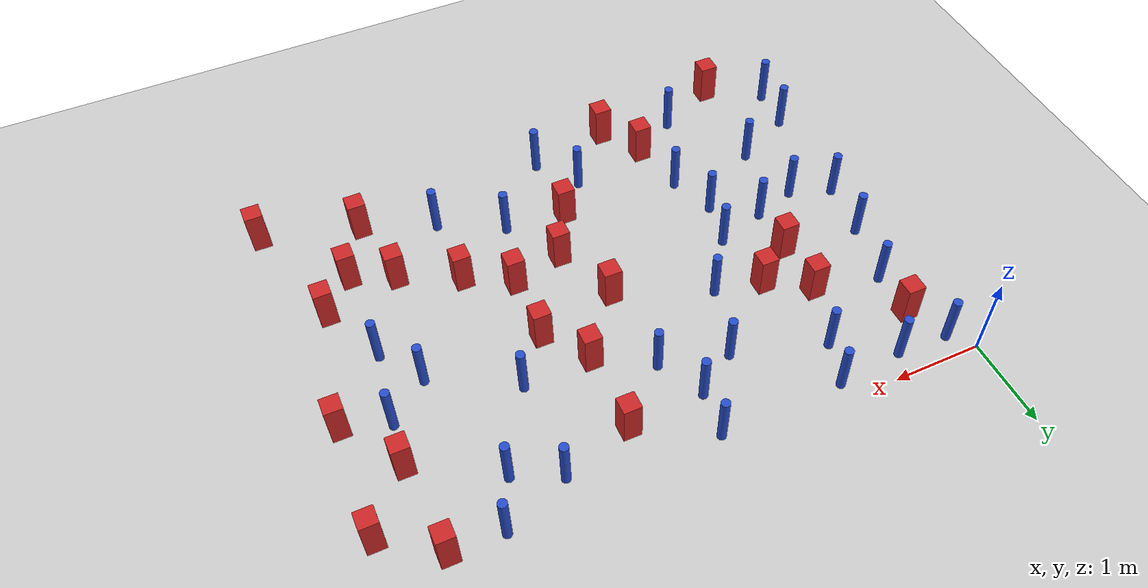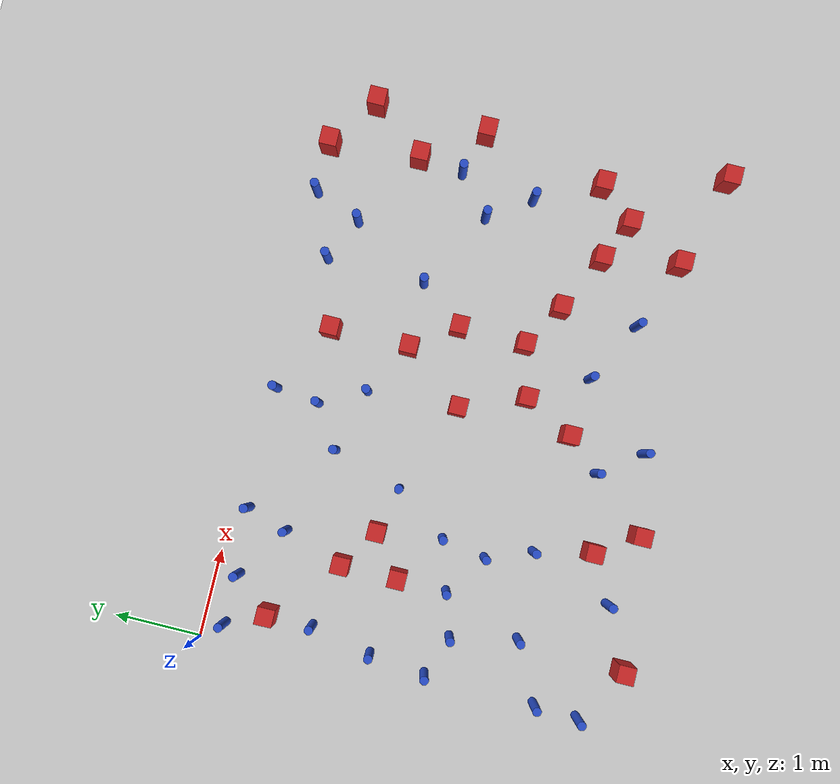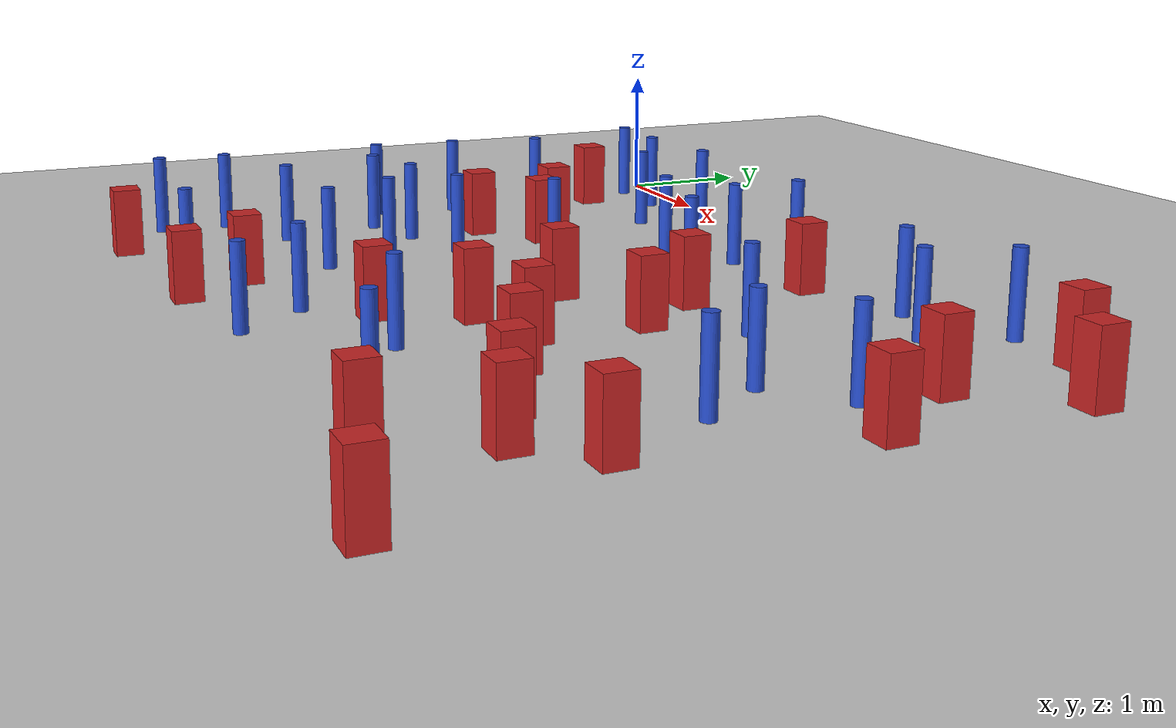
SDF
<sdf version="1.6">
 <world name="default">
  <model name="ground_plane">
   <static>1</static>
   <link name="link">
    <collision name="collision">
     <geometry><plane><normal>0 0 1</normal><size>100 100</size></plane></geometry>
     <surface><friction><ode><mu>100</mu><mu2>50</mu2></ode></friction></surface>
    </collision>
    <visual name="visual">
     <cast_shadows>0</cast_shadows>
     <geometry><plane><normal>0 0 1</normal><size>100 100</size></plane></geometry>
     <material>
      <ambient>1.0 1.0 1.0 1.0</ambient>
      <diffuse>0.8 0.8 0.8 1.0</diffuse>
      <specular>0.01 0.01 0.01 1.000000</specular>
     </material>
    </visual>
   </link>
  </model>
  <model name="square_post_obstacle1">
   <static>true</static>
   <pose>5.72487765999 -3.64540734115 8.22691968438e-08 7.2212513382e-06 -7.54495500217e-07 2.29674213826e-05</pose>
   <link name="link">
    <pose>0 0 0.25 0 -0 0</pose>
    <inertial>
     <mass>100</mass>
     <inertia>
      <ixx>0.166667</ixx>
      <ixy>0</ixy>
      <ixz>0</ixz>
      <iyy>0.166667</iyy>
      <iyz>0</iyz>
      <izz>0.166667</izz>
     </inertia>
    </inertial>
    <collision name="collision"><geometry><box><size>.2 .2 .5</size></box></geometry></collision>
    <visual name="visual">
     <geometry><box><size>.2 .2 .5</size></box></geometry>
     <material>
      <script><name>Gazebo/Red</name><uri>file://media/materials/scripts/gazebo.material</uri></script>
     </material>
    </visual>
   </link>
  </model>
  <model name="square_post_obstacle2">
   <static>true</static>
   <pose>1.18272319816 -2.02289545144 8.22691968438e-08 7.2212513382e-06 -7.54495500217e-07 2.29674213826e-05</pose>
   <link name="link">
    <pose>0 0 0.25 0 -0 0</pose>
    <inertial>
     <mass>100</mass>
     <inertia>
      <ixx>0.166667</ixx>
      <ixy>0</ixy>
      <ixz>0</ixz>
      <iyy>0.166667</iyy>
      <iyz>0</iyz>
      <izz>0.166667</izz>
     </inertia>
    </inertial>
    <collision name="collision"><geometry><box><size>.2 .2 .5</size></box></geometry></collision>
    <visual name="visual">
     <geometry><box><size>.2 .2 .5</size></box></geometry>
     <material>
      <script><name>Gazebo/Red</name><uri>file://media/materials/scripts/gazebo.material</uri></script>
     </material>
    </visual>
   </link>
  </model>
  <model name="pole_obstacle2">
   <static>true</static>
   <pose>1.45222959492 -4.40342588825 2.88873142074e-08 -9.90536689852e-09 4.60219948989e-07 -1.2096599496e-07</pose>
   <link name="link">
    <pose>0 0 0.3 0 -0 0</pose>
    <inertial>
     <mass>1</mass>
     <inertia><ixx>0.145833</ixx><ixy>0</ixy><ixz>0</ixz><iyy>0.145833</iyy><iyz>0</iyz><izz>0.125</izz></inertia>
    </inertial>
    <collision name="collision">
     <geometry><cylinder><radius>0.05</radius><length>.6</length></cylinder></geometry>
    </collision>
    <visual name="visual">
     <geometry><cylinder><radius>0.05</radius><length>.6</length></cylinder></geometry>
     <material>
      <script><name>Gazebo/Blue</name><uri>file://media/materials/scripts/gazebo.material</uri></script>
     </material>
    </visual>
   </link>
  </model>
  <model name="pole_obstacle4">
   <static>true</static>
   <pose>1.83298338898 -3.44916255037 2.88873142074e-08 -9.90536689791e-09 4.6021994899e-07 -1.20965994959e-07</pose>
   <link name="link">
    <pose>0 0 0.3 0 -0 0</pose>
    <inertial>
     <mass>1</mass>
     <inertia><ixx>0.145833</ixx><ixy>0</ixy><ixz>0</ixz><iyy>0.145833</iyy><iyz>0</iyz><izz>0.125</izz></inertia>
    </inertial>
    <collision name="collision">
     <geometry><cylinder><radius>0.05</radius><length>.6</length></cylinder></geometry>
    </collision>
    <visual name="visual">
     <geometry><cylinder><radius>0.05</radius><length>.6</length></cylinder></geometry>
     <material>
      <script><name>Gazebo/Blue</name><uri>file://media/materials/scripts/gazebo.material</uri></script>
     </material>
    </visual>
   </link>
  </model>
  <model name="square_post_obstacle13">
   <static>true</static>
   <pose>5.40528865388 -4.31110512093 8.22691968438e-08 7.2212513382e-06 -7.54495500217e-07 2.29674213826e-05</pose>
   <link name="link">
    <pose>0 0 0.25 0 -0 0</pose>
    <inertial>
     <mass>100</mass>
     <inertia>
      <ixx>0.166667</ixx>
      <ixy>0</ixy>
      <ixz>0</ixz>
      <iyy>0.166667</iyy>
      <iyz>0</iyz>
      <izz>0.166667</izz>
     </inertia>
    </inertial>
    <collision name="collision"><geometry><box><size>.2 .2 .5</size></box></geometry></collision>
    <visual name="visual">
     <geometry><box><size>.2 .2 .5</size></box></geometry>
     <material>
      <script><name>Gazebo/Red</name><uri>file://media/materials/scripts/gazebo.material</uri></script>
     </material>
    </visual>
   </link>
  </model>
  <model name="square_post_obstacle19">
   <static>true</static>
   <pose>4.11415829672 -2.03390158334 8.22691968438e-08 7.2212513382e-06 -7.54495500217e-07 2.29674213826e-05</pose>
   <link name="link">
    <pose>0 0 0.25 0 -0 0</pose>
    <inertial>
     <mass>100</mass>
     <inertia>
      <ixx>0.166667</ixx>
      <ixy>0</ixy>
      <ixz>0</ixz>
      <iyy>0.166667</iyy>
      <iyz>0</iyz>
      <izz>0.166667</izz>
     </inertia>
    </inertial>
    <collision name="collision"><geometry><box><size>.2 .2 .5</size></box></geometry></collision>
    <visual name="visual">
     <geometry><box><size>.2 .2 .5</size></box></geometry>
     <material>
      <script><name>Gazebo/Red</name><uri>file://media/materials/scripts/gazebo.material</uri></script>
     </material>
    </visual>
   </link>
  </model>
  <model name="square_post_obstacle24">
   <static>true</static>
   <pose>6.48046780538 -4.62442355407 8.22691968438e-08 7.2212513382e-06 -7.54495500217e-07 2.29674213826e-05</pose>
   <link name="link">
    <pose>0 0 0.25 0 -0 0</pose>
    <inertial>
     <mass>100</mass>
     <inertia>
      <ixx>0.166667</ixx>
      <ixy>0</ixy>
      <ixz>0</ixz>
      <iyy>0.166667</iyy>
      <iyz>0</iyz>
      <izz>0.166667</izz>
     </inertia>
    </inertial>
    <collision name="collision"><geometry><box><size>.2 .2 .5</size></box></geometry></collision>
    <visual name="visual">
     <geometry><box><size>.2 .2 .5</size></box></geometry>
     <material>
      <script><name>Gazebo/Red</name><uri>file://media/materials/scripts/gazebo.material</uri></script>
     </material>
    </visual>
   </link>
  </model>
  <model name="pole_obstacle23">
   <static>true</static>
   <pose>4.51548085115 -1.52464461213 2.88873142074e-08 -9.90536689445e-09 4.60219948999e-07 -1.20965994956e-07</pose>
   <link name="link">
    <pose>0 0 0.3 0 -0 0</pose>
    <inertial>
     <mass>1</mass>
     <inertia><ixx>0.145833</ixx><ixy>0</ixy><ixz>0</ixz><iyy>0.145833</iyy><iyz>0</iyz><izz>0.125</izz></inertia>
    </inertial>
    <collision name="collision">
     <geometry><cylinder><radius>0.05</radius><length>.6</length></cylinder></geometry>
    </collision>
    <visual name="visual">
     <geometry><cylinder><radius>0.05</radius><length>.6</length></cylinder></geometry>
     <material>
      <script><name>Gazebo/Blue</name><uri>file://media/materials/scripts/gazebo.material</uri></script>
     </material>
    </visual>
   </link>
  </model>
  <model name="pole_obstacle29">
   <static>true</static>
   <pose>2.89399092604 -0.676340867855 2.88873142074e-08 -9.90536689285e-09 4.60219949002e-07 -1.20965994953e-07</pose>
   <link name="link">
    <pose>0 0 0.3 0 -0 0</pose>
    <inertial>
     <mass>1</mass>
     <inertia><ixx>0.145833</ixx><ixy>0</ixy><ixz>0</ixz><iyy>0.145833</iyy><iyz>0</iyz><izz>0.125</izz></inertia>
    </inertial>
    <collision name="collision">
     <geometry><cylinder><radius>0.05</radius><length>.6</length></cylinder></geometry>
    </collision>
    <visual name="visual">
     <geometry><cylinder><radius>0.05</radius><length>.6</length></cylinder></geometry>
     <material>
      <script><name>Gazebo/Blue</name><uri>file://media/materials/scripts/gazebo.material</uri></script>
     </material>
    </visual>
   </link>
  </model>
  <model name="pole_obstacle32">
   <static>true</static>
   <pose>4.59969641409 -3.99796539651 2.88873142074e-08 -9.90536690067e-09 4.60219948984e-07 -1.20965994963e-07</pose>
   <link name="link">
    <pose>0 0 0.3 0 -0 0</pose>
    <inertial>
     <mass>1</mass>
     <inertia><ixx>0.145833</ixx><ixy>0</ixy><ixz>0</ixz><iyy>0.145833</iyy><iyz>0</iyz><izz>0.125</izz></inertia>
    </inertial>
    <collision name="collision">
     <geometry><cylinder><radius>0.05</radius><length>.6</length></cylinder></geometry>
    </collision>
    <visual name="visual">
     <geometry><cylinder><radius>0.05</radius><length>.6</length></cylinder></geometry>
     <material>
      <script><name>Gazebo/Blue</name><uri>file://media/materials/scripts/gazebo.material</uri></script>
     </material>
    </visual>
   </link>
  </model>
  <model name="square_post_obstacle35">
   <static>true</static>
   <pose>0.443838469542 -0.69873677261 8.22691968438e-08 7.2212513382e-06 -7.54495500217e-07 2.29674213826e-05</pose>
   <link name="link">
    <pose>0 0 0.25 0 -0 0</pose>
    <inertial>
     <mass>100</mass>
     <inertia>
      <ixx>0.166667</ixx>
      <ixy>0</ixy>
      <ixz>0</ixz>
      <iyy>0.166667</iyy>
      <iyz>0</iyz>
      <izz>0.166667</izz>
     </inertia>
    </inertial>
    <collision name="collision"><geometry><box><size>.2 .2 .5</size></box></geometry></collision>
    <visual name="visual">
     <geometry><box><size>.2 .2 .5</size></box></geometry>
     <material>
      <script><name>Gazebo/Red</name><uri>file://media/materials/scripts/gazebo.material</uri></script>
     </material>
    </visual>
   </link>
  </model>
  <model name="pole_obstacle34">
   <static>true</static>
   <pose>0.80281314503 -0.26860404355 2.88873142074e-08 -9.90536689796e-09 4.6021994899e-07 -1.20965994959e-07</pose>
   <link name="link">
    <pose>0 0 0.3 0 -0 0</pose>
    <inertial>
     <mass>1</mass>
     <inertia><ixx>0.145833</ixx><ixy>0</ixy><ixz>0</ixz><iyy>0.145833</iyy><iyz>0</iyz><izz>0.125</izz></inertia>
    </inertial>
    <collision name="collision">
     <geometry><cylinder><radius>0.05</radius><length>.6</length></cylinder></geometry>
    </collision>
    <visual name="visual">
     <geometry><cylinder><radius>0.05</radius><length>.6</length></cylinder></geometry>
     <material>
      <script><name>Gazebo/Blue</name><uri>file://media/materials/scripts/gazebo.material</uri></script>
     </material>
    </visual>
   </link>
  </model>
  <model name="square_post_obstacle39">
   <static>true</static>
   <pose>2.28700002814 -4.57129854948 8.22691968438e-08 7.2212513382e-06 -7.54495500217e-07 2.29674213826e-05</pose>
   <link name="link">
    <pose>0 0 0.25 0 -0 0</pose>
    <inertial>
     <mass>100</mass>
     <inertia>
      <ixx>0.166667</ixx>
      <ixy>0</ixy>
      <ixz>0</ixz>
      <iyy>0.166667</iyy>
      <iyz>0</iyz>
      <izz>0.166667</izz>
     </inertia>
    </inertial>
    <collision name="collision"><geometry><box><size>.2 .2 .5</size></box></geometry></collision>
    <visual name="visual">
     <geometry><box><size>.2 .2 .5</size></box></geometry>
     <material>
      <script><name>Gazebo/Red</name><uri>file://media/materials/scripts/gazebo.material</uri></script>
     </material>
    </visual>
   </link>
  </model>
  <model name="pole_obstacle44">
   <static>true</static>
   <pose>2.16670818948 -1.80662107795 2.88873142074e-08 -9.90536689395e-09 4.60219949e-07 -1.20965994953e-07</pose>
   <link name="link">
    <pose>0 0 0.3 0 -0 0</pose>
    <inertial>
     <mass>1</mass>
     <inertia><ixx>0.145833</ixx><ixy>0</ixy><ixz>0</ixz><iyy>0.145833</iyy><iyz>0</iyz><izz>0.125</izz></inertia>
    </inertial>
    <collision name="collision">
     <geometry><cylinder><radius>0.05</radius><length>.6</length></cylinder></geometry>
    </collision>
    <visual name="visual">
     <geometry><cylinder><radius>0.05</radius><length>.6</length></cylinder></geometry>
     <material>
      <script><name>Gazebo/Blue</name><uri>file://media/materials/scripts/gazebo.material</uri></script>
     </material>
    </visual>
   </link>
  </model>
  <model name="square_post_obstacle42">
   <static>true</static>
   <pose>6.36139301831 -1.82089563555 8.22691968438e-08 7.2212513382e-06 -7.54495500217e-07 2.29674213826e-05</pose>
   <link name="link">
    <pose>0 0 0.25 0 -0 0</pose>
    <inertial>
     <mass>100</mass>
     <inertia>
      <ixx>0.166667</ixx>
      <ixy>0</ixy>
      <ixz>0</ixz>
      <iyy>0.166667</iyy>
      <iyz>0</iyz>
      <izz>0.166667</izz>
     </inertia>
    </inertial>
    <collision name="collision"><geometry><box><size>.2 .2 .5</size></box></geometry></collision>
    <visual name="visual">
     <geometry><box><size>.2 .2 .5</size></box></geometry>
     <material>
      <script><name>Gazebo/Red</name><uri>file://media/materials/scripts/gazebo.material</uri></script>
     </material>
    </visual>
   </link>
  </model>
  <model name="square_post_obstacle44">
   <static>true</static>
   <pose>6.4024582333 -0.522515624026 8.22691968438e-08 7.2212513382e-06 -7.54495500217e-07 2.29674213826e-05</pose>
   <link name="link">
    <pose>0 0 0.25 0 -0 0</pose>
    <inertial>
     <mass>100</mass>
     <inertia>
      <ixx>0.166667</ixx>
      <ixy>0</ixy>
      <ixz>0</ixz>
      <iyy>0.166667</iyy>
      <iyz>0</iyz>
      <izz>0.166667</izz>
     </inertia>
    </inertial>
    <collision name="collision"><geometry><box><size>.2 .2 .5</size></box></geometry></collision>
    <visual name="visual">
     <geometry><box><size>.2 .2 .5</size></box></geometry>
     <material>
      <script><name>Gazebo/Red</name><uri>file://media/materials/scripts/gazebo.material</uri></script>
     </material>
    </visual>
   </link>
  </model>
  <model name="square_post_obstacle50">
   <static>true</static>
   <pose>3.7557978755 -0.625349329425 8.22691968438e-08 7.2212513382e-06 -7.54495500217e-07 2.29674213826e-05</pose>
   <link name="link">
    <pose>0 0 0.25 0 -0 0</pose>
    <inertial>
     <mass>100</mass>
     <inertia>
      <ixx>0.166667</ixx>
      <ixy>0</ixy>
      <ixz>0</ixz>
      <iyy>0.166667</iyy>
      <iyz>0</iyz>
      <izz>0.166667</izz>
     </inertia>
    </inertial>
    <collision name="collision"><geometry><box><size>.2 .2 .5</size></box></geometry></collision>
    <visual name="visual">
     <geometry><box><size>.2 .2 .5</size></box></geometry>
     <material>
      <script><name>Gazebo/Red</name><uri>file://media/materials/scripts/gazebo.material</uri></script>
     </material>
    </visual>
   </link>
  </model>
  <model name="square_post_obstacle53">
   <static>true</static>
   <pose>3.2219890172 -2.2357460858 8.22691968438e-08 7.2212513382e-06 -7.54495500217e-07 2.29674213826e-05</pose>
   <link name="link">
    <pose>0 0 0.25 0 -0 0</pose>
    <inertial>
     <mass>100</mass>
     <inertia>
      <ixx>0.166667</ixx>
      <ixy>0</ixy>
      <ixz>0</ixz>
      <iyy>0.166667</iyy>
      <iyz>0</iyz>
      <izz>0.166667</izz>
     </inertia>
    </inertial>
    <collision name="collision"><geometry><box><size>.2 .2 .5</size></box></geometry></collision>
    <visual name="visual">
     <geometry><box><size>.2 .2 .5</size></box></geometry>
     <material>
      <script><name>Gazebo/Red</name><uri>file://media/materials/scripts/gazebo.material</uri></script>
     </material>
    </visual>
   </link>
  </model>
  <model name="pole_obstacle54">
   <static>true</static>
   <pose>5.41477939068 -2.03363524688 2.88873142074e-08 -9.90536689749e-09 4.60219948991e-07 -1.20965994959e-07</pose>
   <link name="link">
    <pose>0 0 0.3 0 -0 0</pose>
    <inertial>
     <mass>1</mass>
     <inertia><ixx>0.145833</ixx><ixy>0</ixy><ixz>0</ixz><iyy>0.145833</iyy><iyz>0</iyz><izz>0.125</izz></inertia>
    </inertial>
    <collision name="collision">
     <geometry><cylinder><radius>0.05</radius><length>.6</length></cylinder></geometry>
    </collision>
    <visual name="visual">
     <geometry><cylinder><radius>0.05</radius><length>.6</length></cylinder></geometry>
     <material>
      <script><name>Gazebo/Blue</name><uri>file://media/materials/scripts/gazebo.material</uri></script>
     </material>
    </visual>
   </link>
  </model>
  <model name="pole_obstacle57">
   <static>true</static>
   <pose>0.205067899087 -2.57253576964 2.88873142074e-08 -9.90536692545e-09 4.60219948925e-07 -1.2096599499e-07</pose>
   <link name="link">
    <pose>0 0 0.3 0 -0 0</pose>
    <inertial>
     <mass>1</mass>
     <inertia><ixx>0.145833</ixx><ixy>0</ixy><ixz>0</ixz><iyy>0.145833</iyy><iyz>0</iyz><izz>0.125</izz></inertia>
    </inertial>
    <collision name="collision">
     <geometry><cylinder><radius>0.05</radius><length>.6</length></cylinder></geometry>
    </collision>
    <visual name="visual">
     <geometry><cylinder><radius>0.05</radius><length>.6</length></cylinder></geometry>
     <material>
      <script><name>Gazebo/Blue</name><uri>file://media/materials/scripts/gazebo.material</uri></script>
     </material>
    </visual>
   </link>
  </model>
  <model name="square_post_obstacle62">
   <static>true</static>
   <pose>4.60149039528 -3.10729639144 8.22691968438e-08 7.2212513382e-06 -7.54495500217e-07 2.29674213826e-05</pose>
   <link name="link">
    <pose>0 0 0.25 0 -0 0</pose>
    <inertial>
     <mass>100</mass>
     <inertia>
      <ixx>0.166667</ixx>
      <ixy>0</ixy>
      <ixz>0</ixz>
      <iyy>0.166667</iyy>
      <iyz>0</iyz>
      <izz>0.166667</izz>
     </inertia>
    </inertial>
    <collision name="collision"><geometry><box><size>.2 .2 .5</size></box></geometry></collision>
    <visual name="visual">
     <geometry><box><size>.2 .2 .5</size></box></geometry>
     <material>
      <script><name>Gazebo/Red</name><uri>file://media/materials/scripts/gazebo.material</uri></script>
     </material>
    </visual>
   </link>
  </model>
  <model name="pole_obstacle61">
   <static>true</static>
   <pose>5.74250074183 -2.51874879298 2.88873142074e-08 -9.90536690245e-09 4.6021994898e-07 -1.20965994966e-07</pose>
   <link name="link">
    <pose>0 0 0.3 0 -0 0</pose>
    <inertial>
     <mass>1</mass>
     <inertia><ixx>0.145833</ixx><ixy>0</ixy><ixz>0</ixz><iyy>0.145833</iyy><iyz>0</iyz><izz>0.125</izz></inertia>
    </inertial>
    <collision name="collision">
     <geometry><cylinder><radius>0.05</radius><length>.6</length></cylinder></geometry>
    </collision>
    <visual name="visual">
     <geometry><cylinder><radius>0.05</radius><length>.6</length></cylinder></geometry>
     <material>
      <script><name>Gazebo/Blue</name><uri>file://media/materials/scripts/gazebo.material</uri></script>
     </material>
    </visual>
   </link>
  </model>
  <model name="square_post_obstacle66">
   <static>true</static>
   <pose>1.6369478896 -1.6759942577 8.22691968438e-08 7.2212513382e-06 -7.54495500217e-07 2.29674213826e-05</pose>
   <link name="link">
    <pose>0 0 0.25 0 -0 0</pose>
    <inertial>
     <mass>100</mass>
     <inertia>
      <ixx>0.166667</ixx>
      <ixy>0</ixy>
      <ixz>0</ixz>
      <iyy>0.166667</iyy>
      <iyz>0</iyz>
      <izz>0.166667</izz>
     </inertia>
    </inertial>
    <collision name="collision"><geometry><box><size>.2 .2 .5</size></box></geometry></collision>
    <visual name="visual">
     <geometry><box><size>.2 .2 .5</size></box></geometry>
     <material>
      <script><name>Gazebo/Red</name><uri>file://media/materials/scripts/gazebo.material</uri></script>
     </material>
    </visual>
   </link>
  </model>
  <model name="square_post_obstacle73">
   <static>true</static>
   <pose>1.18640314869 -1.37313536753 8.22691968438e-08 7.2212513382e-06 -7.54495500217e-07 2.29674213826e-05</pose>
   <link name="link">
    <pose>0 0 0.25 0 -0 0</pose>
    <inertial>
     <mass>100</mass>
     <inertia>
      <ixx>0.166667</ixx>
      <ixy>0</ixy>
      <ixz>0</ixz>
      <iyy>0.166667</iyy>
      <iyz>0</iyz>
      <izz>0.166667</izz>
     </inertia>
    </inertial>
    <collision name="collision"><geometry><box><size>.2 .2 .5</size></box></geometry></collision>
    <visual name="visual">
     <geometry><box><size>.2 .2 .5</size></box></geometry>
     <material>
      <script><name>Gazebo/Red</name><uri>file://media/materials/scripts/gazebo.material</uri></script>
     </material>
    </visual>
   </link>
  </model>
  <model name="square_post_obstacle74">
   <static>true</static>
   <pose>1.98281788493 -4.09527438673 8.22691968438e-08 7.2212513382e-06 -7.54495500217e-07 2.29674213826e-05</pose>
   <link name="link">
    <pose>0 0 0.25 0 -0 0</pose>
    <inertial>
     <mass>100</mass>
     <inertia>
      <ixx>0.166667</ixx>
      <ixy>0</ixy>
      <ixz>0</ixz>
      <iyy>0.166667</iyy>
      <iyz>0</iyz>
      <izz>0.166667</izz>
     </inertia>
    </inertial>
    <collision name="collision"><geometry><box><size>.2 .2 .5</size></box></geometry></collision>
    <visual name="visual">
     <geometry><box><size>.2 .2 .5</size></box></geometry>
     <material>
      <script><name>Gazebo/Red</name><uri>file://media/materials/scripts/gazebo.material</uri></script>
     </material>
    </visual>
   </link>
  </model>
  <model name="pole_obstacle80">
   <static>true</static>
   <pose>0.168703325553 -3.84951761207 2.88873142074e-08 -9.90536692387e-09 4.60219948929e-07 -1.20965994988e-07</pose>
   <link name="link">
    <pose>0 0 0.3 0 -0 0</pose>
    <inertial>
     <mass>1</mass>
     <inertia><ixx>0.145833</ixx><ixy>0</ixy><ixz>0</ixz><iyy>0.145833</iyy><iyz>0</iyz><izz>0.125</izz></inertia>
    </inertial>
    <collision name="collision">
     <geometry><cylinder><radius>0.05</radius><length>.6</length></cylinder></geometry>
    </collision>
    <visual name="visual">
     <geometry><cylinder><radius>0.05</radius><length>.6</length></cylinder></geometry>
     <material>
      <script><name>Gazebo/Blue</name><uri>file://media/materials/scripts/gazebo.material</uri></script>
     </material>
    </visual>
   </link>
  </model>
  <model name="pole_obstacle84">
   <static>true</static>
   <pose>1.63577911008 -2.92885293056 2.88873142074e-08 -9.90536689791e-09 4.6021994899e-07 -1.20965994959e-07</pose>
   <link name="link">
    <pose>0 0 0.3 0 -0 0</pose>
    <inertial>
     <mass>1</mass>
     <inertia><ixx>0.145833</ixx><ixy>0</ixy><ixz>0</ixz><iyy>0.145833</iyy><iyz>0</iyz><izz>0.125</izz></inertia>
    </inertial>
    <collision name="collision">
     <geometry><cylinder><radius>0.05</radius><length>.6</length></cylinder></geometry>
    </collision>
    <visual name="visual">
     <geometry><cylinder><radius>0.05</radius><length>.6</length></cylinder></geometry>
     <material>
      <script><name>Gazebo/Blue</name><uri>file://media/materials/scripts/gazebo.material</uri></script>
     </material>
    </visual>
   </link>
  </model>
  <model name="pole_obstacle85">
   <static>true</static>
   <pose>3.89285301896 -3.62022898283 2.88873142074e-08 -9.90536690232e-09 4.6021994898e-07 -1.20965994968e-07</pose>
   <link name="link">
    <pose>0 0 0.3 0 -0 0</pose>
    <inertial>
     <mass>1</mass>
     <inertia><ixx>0.145833</ixx><ixy>0</ixy><ixz>0</ixz><iyy>0.145833</iyy><iyz>0</iyz><izz>0.125</izz></inertia>
    </inertial>
    <collision name="collision">
     <geometry><cylinder><radius>0.05</radius><length>.6</length></cylinder></geometry>
    </collision>
    <visual name="visual">
     <geometry><cylinder><radius>0.05</radius><length>.6</length></cylinder></geometry>
     <material>
      <script><name>Gazebo/Blue</name><uri>file://media/materials/scripts/gazebo.material</uri></script>
     </material>
    </visual>
   </link>
  </model>
  <model name="pole_obstacle86">
   <static>true</static>
   <pose>5.25705738953 -0.0849788573613 2.88873142074e-08 -9.90536689832e-09 4.60219948989e-07 -1.20965994961e-07</pose>
   <link name="link">
    <pose>0 0 0.3 0 -0 0</pose>
    <inertial>
     <mass>1</mass>
     <inertia><ixx>0.145833</ixx><ixy>0</ixy><ixz>0</ixz><iyy>0.145833</iyy><iyz>0</iyz><izz>0.125</izz></inertia>
    </inertial>
    <collision name="collision">
     <geometry><cylinder><radius>0.05</radius><length>.6</length></cylinder></geometry>
    </collision>
    <visual name="visual">
     <geometry><cylinder><radius>0.05</radius><length>.6</length></cylinder></geometry>
     <material>
      <script><name>Gazebo/Blue</name><uri>file://media/materials/scripts/gazebo.material</uri></script>
     </material>
    </visual>
   </link>
  </model>
  <model name="pole_obstacle89">
   <static>true</static>
   <pose>0.43352871307 -1.21379336709 2.88873142074e-08 -9.90536689905e-09 4.60219948988e-07 -1.2096599496e-07</pose>
   <link name="link">
    <pose>0 0 0.3 0 -0 0</pose>
    <inertial>
     <mass>1</mass>
     <inertia><ixx>0.145833</ixx><ixy>0</ixy><ixz>0</ixz><iyy>0.145833</iyy><iyz>0</iyz><izz>0.125</izz></inertia>
    </inertial>
    <collision name="collision">
     <geometry><cylinder><radius>0.05</radius><length>.6</length></cylinder></geometry>
    </collision>
    <visual name="visual">
     <geometry><cylinder><radius>0.05</radius><length>.6</length></cylinder></geometry>
     <material>
      <script><name>Gazebo/Blue</name><uri>file://media/materials/scripts/gazebo.material</uri></script>
     </material>
    </visual>
   </link>
  </model>
  <model name="pole_obstacle96">
   <static>true</static>
   <pose>1.73631373938 -2.4167301823 2.88873142074e-08 -9.90536689791e-09 4.6021994899e-07 -1.20965994959e-07</pose>
   <link name="link">
    <pose>0 0 0.3 0 -0 0</pose>
    <inertial>
     <mass>1</mass>
     <inertia><ixx>0.145833</ixx><ixy>0</ixy><ixz>0</ixz><iyy>0.145833</iyy><iyz>0</iyz><izz>0.125</izz></inertia>
    </inertial>
    <collision name="collision">
     <geometry><cylinder><radius>0.05</radius><length>.6</length></cylinder></geometry>
    </collision>
    <visual name="visual">
     <geometry><cylinder><radius>0.05</radius><length>.6</length></cylinder></geometry>
     <material>
      <script><name>Gazebo/Blue</name><uri>file://media/materials/scripts/gazebo.material</uri></script>
     </material>
    </visual>
   </link>
  </model>
  <model name="pole_obstacle99">
   <static>true</static>
   <pose>1.40524081257 -0.675896262272 2.88873142074e-08 -9.90536689692e-09 4.60219948993e-07 -1.20965994958e-07</pose>
   <link name="link">
    <pose>0 0 0.3 0 -0 0</pose>
    <inertial>
     <mass>1</mass>
     <inertia><ixx>0.145833</ixx><ixy>0</ixy><ixz>0</ixz><iyy>0.145833</iyy><iyz>0</iyz><izz>0.125</izz></inertia>
    </inertial>
    <collision name="collision">
     <geometry><cylinder><radius>0.05</radius><length>.6</length></cylinder></geometry>
    </collision>
    <visual name="visual">
     <geometry><cylinder><radius>0.05</radius><length>.6</length></cylinder></geometry>
     <material>
      <script><name>Gazebo/Blue</name><uri>file://media/materials/scripts/gazebo.material</uri></script>
     </material>
    </visual>
   </link>
  </model>
  <model name="square_post_obstacle111">
   <static>true</static>
   <pose>3.20531710507 -3.54006245201 8.22691968438e-08 7.2212513382e-06 -7.54495500217e-07 2.29674213826e-05</pose>
   <link name="link">
    <pose>0 0 0.25 0 -0 0</pose>
    <inertial>
     <mass>100</mass>
     <inertia>
      <ixx>0.166667</ixx>
      <ixy>0</ixy>
      <ixz>0</ixz>
      <iyy>0.166667</iyy>
      <iyz>0</iyz>
      <izz>0.166667</izz>
     </inertia>
    </inertial>
    <collision name="collision"><geometry><box><size>.2 .2 .5</size></box></geometry></collision>
    <visual name="visual">
     <geometry><box><size>.2 .2 .5</size></box></geometry>
     <material>
      <script><name>Gazebo/Red</name><uri>file://media/materials/scripts/gazebo.material</uri></script>
     </material>
    </visual>
   </link>
  </model>
  <model name="pole_obstacle124">
   <static>true</static>
   <pose>4.53436271061 -0.383620744187 2.88873142074e-08 -9.90536689981e-09 4.60219948986e-07 -1.20965994962e-07</pose>
   <link name="link">
    <pose>0 0 0.3 0 -0 0</pose>
    <inertial>
     <mass>1</mass>
     <inertia><ixx>0.145833</ixx><ixy>0</ixy><ixz>0</ixz><iyy>0.145833</iyy><iyz>0</iyz><izz>0.125</izz></inertia>
    </inertial>
    <collision name="collision">
     <geometry><cylinder><radius>0.05</radius><length>.6</length></cylinder></geometry>
    </collision>
    <visual name="visual">
     <geometry><cylinder><radius>0.05</radius><length>.6</length></cylinder></geometry>
     <material>
      <script><name>Gazebo/Blue</name><uri>file://media/materials/scripts/gazebo.material</uri></script>
     </material>
    </visual>
   </link>
  </model>
  <model name="pole_obstacle127">
   <static>true</static>
   <pose>3.20485176521 -4.41129183848 2.88873142074e-08 -9.90536689859e-09 4.60219948989e-07 -1.20965994961e-07</pose>
   <link name="link">
    <pose>0 0 0.3 0 -0 0</pose>
    <inertial>
     <mass>1</mass>
     <inertia><ixx>0.145833</ixx><ixy>0</ixy><ixz>0</ixz><iyy>0.145833</iyy><iyz>0</iyz><izz>0.125</izz></inertia>
    </inertial>
    <collision name="collision">
     <geometry><cylinder><radius>0.05</radius><length>.6</length></cylinder></geometry>
    </collision>
    <visual name="visual">
     <geometry><cylinder><radius>0.05</radius><length>.6</length></cylinder></geometry>
     <material>
      <script><name>Gazebo/Blue</name><uri>file://media/materials/scripts/gazebo.material</uri></script>
     </material>
    </visual>
   </link>
  </model>
  <model name="pole_obstacle134">
   <static>true</static>
   <pose>2.9510220548 -0.174708453393 2.88873142074e-08 -9.90536689156e-09 4.60219949005e-07 -1.20965994951e-07</pose>
   <link name="link">
    <pose>0 0 0.3 0 -0 0</pose>
    <inertial>
     <mass>1</mass>
     <inertia><ixx>0.145833</ixx><ixy>0</ixy><ixz>0</ixz><iyy>0.145833</iyy><iyz>0</iyz><izz>0.125</izz></inertia>
    </inertial>
    <collision name="collision">
     <geometry><cylinder><radius>0.05</radius><length>.6</length></cylinder></geometry>
    </collision>
    <visual name="visual">
     <geometry><cylinder><radius>0.05</radius><length>.6</length></cylinder></geometry>
     <material>
      <script><name>Gazebo/Blue</name><uri>file://media/materials/scripts/gazebo.material</uri></script>
     </material>
    </visual>
   </link>
  </model>
  <model name="pole_obstacle141">
   <static>true</static>
   <pose>0.134539013238 -4.35906262883 2.88873142074e-08 -9.90536689843e-09 4.60219948989e-07 -1.20965994962e-07</pose>
   <link name="link">
    <pose>0 0 0.3 0 -0 0</pose>
    <inertial>
     <mass>1</mass>
     <inertia><ixx>0.145833</ixx><ixy>0</ixy><ixz>0</ixz><iyy>0.145833</iyy><iyz>0</iyz><izz>0.125</izz></inertia>
    </inertial>
    <collision name="collision">
     <geometry><cylinder><radius>0.05</radius><length>.6</length></cylinder></geometry>
    </collision>
    <visual name="visual">
     <geometry><cylinder><radius>0.05</radius><length>.6</length></cylinder></geometry>
     <material>
      <script><name>Gazebo/Blue</name><uri>file://media/materials/scripts/gazebo.material</uri></script>
     </material>
    </visual>
   </link>
  </model>
  <model name="square_post_obstacle144">
   <static>true</static>
   <pose>3.50844523813 -2.97135261086 8.22691968438e-08 7.2212513382e-06 -7.54495500217e-07 2.29674213826e-05</pose>
   <link name="link">
    <pose>0 0 0.25 0 -0 0</pose>
    <inertial>
     <mass>100</mass>
     <inertia>
      <ixx>0.166667</ixx>
      <ixy>0</ixy>
      <ixz>0</ixz>
      <iyy>0.166667</iyy>
      <iyz>0</iyz>
      <izz>0.166667</izz>
     </inertia>
    </inertial>
    <collision name="collision"><geometry><box><size>.2 .2 .5</size></box></geometry></collision>
    <visual name="visual">
     <geometry><box><size>.2 .2 .5</size></box></geometry>
     <material>
      <script><name>Gazebo/Red</name><uri>file://media/materials/scripts/gazebo.material</uri></script>
     </material>
    </visual>
   </link>
  </model>
  <model name="square_post_obstacle150">
   <static>true</static>
   <pose>4.09802546397 -2.80906611948 8.22691968438e-08 7.2212513382e-06 -7.54495500217e-07 2.29674213826e-05</pose>
   <link name="link">
    <pose>0 0 0.25 0 -0 0</pose>
    <inertial>
     <mass>100</mass>
     <inertia>
      <ixx>0.166667</ixx>
      <ixy>0</ixy>
      <ixz>0</ixz>
      <iyy>0.166667</iyy>
      <iyz>0</iyz>
      <izz>0.166667</izz>
     </inertia>
    </inertial>
    <collision name="collision"><geometry><box><size>.2 .2 .5</size></box></geometry></collision>
    <visual name="visual">
     <geometry><box><size>.2 .2 .5</size></box></geometry>
     <material>
      <script><name>Gazebo/Red</name><uri>file://media/materials/scripts/gazebo.material</uri></script>
     </material>
    </visual>
   </link>
  </model>
  <model name="pole_obstacle164">
   <static>true</static>
   <pose>1.55742207091 -0.196296737549 2.88873142074e-08 -9.90536689986e-09 4.60219948986e-07 -1.20965994962e-07</pose>
   <link name="link">
    <pose>0 0 0.3 0 -0 0</pose>
    <inertial>
     <mass>1</mass>
     <inertia><ixx>0.145833</ixx><ixy>0</ixy><ixz>0</ixz><iyy>0.145833</iyy><iyz>0</iyz><izz>0.125</izz></inertia>
    </inertial>
    <collision name="collision">
     <geometry><cylinder><radius>0.05</radius><length>.6</length></cylinder></geometry>
    </collision>
    <visual name="visual">
     <geometry><cylinder><radius>0.05</radius><length>.6</length></cylinder></geometry>
     <material>
      <script><name>Gazebo/Blue</name><uri>file://media/materials/scripts/gazebo.material</uri></script>
     </material>
    </visual>
   </link>
  </model>
  <model name="pole_obstacle170">
   <static>true</static>
   <pose>2.4204134862 -0.996666952791 2.88873142074e-08 -9.90536689217e-09 4.60219949004e-07 -1.20965994953e-07</pose>
   <link name="link">
    <pose>0 0 0.3 0 -0 0</pose>
    <inertial>
     <mass>1</mass>
     <inertia><ixx>0.145833</ixx><ixy>0</ixy><ixz>0</ixz><iyy>0.145833</iyy><iyz>0</iyz><izz>0.125</izz></inertia>
    </inertial>
    <collision name="collision">
     <geometry><cylinder><radius>0.05</radius><length>.6</length></cylinder></geometry>
    </collision>
    <visual name="visual">
     <geometry><cylinder><radius>0.05</radius><length>.6</length></cylinder></geometry>
     <material>
      <script><name>Gazebo/Blue</name><uri>file://media/materials/scripts/gazebo.material</uri></script>
     </material>
    </visual>
   </link>
  </model>
  <model name="pole_obstacle172">
   <static>true</static>
   <pose>3.15830222662 -1.19030372535 2.88873142074e-08 -9.90536689395e-09 4.60219949e-07 -1.20965994953e-07</pose>
   <link name="link">
    <pose>0 0 0.3 0 -0 0</pose>
    <inertial>
     <mass>1</mass>
     <inertia><ixx>0.145833</ixx><ixy>0</ixy><ixz>0</ixz><iyy>0.145833</iyy><iyz>0</iyz><izz>0.125</izz></inertia>
    </inertial>
    <collision name="collision">
     <geometry><cylinder><radius>0.05</radius><length>.6</length></cylinder></geometry>
    </collision>
    <visual name="visual">
     <geometry><cylinder><radius>0.05</radius><length>.6</length></cylinder></geometry>
     <material>
      <script><name>Gazebo/Blue</name><uri>file://media/materials/scripts/gazebo.material</uri></script>
     </material>
    </visual>
   </link>
  </model>
  <model name="pole_obstacle178">
   <static>true</static>
   <pose>0.835584831061 -3.50651781176 2.88873142074e-08 -9.90536689636e-09 4.60219948994e-07 -1.20965994958e-07</pose>
   <link name="link">
    <pose>0 0 0.3 0 -0 0</pose>
    <inertial>
     <mass>1</mass>
     <inertia><ixx>0.145833</ixx><ixy>0</ixy><ixz>0</ixz><iyy>0.145833</iyy><iyz>0</iyz><izz>0.125</izz></inertia>
    </inertial>
    <collision name="collision">
     <geometry><cylinder><radius>0.05</radius><length>.6</length></cylinder></geometry>
    </collision>
    <visual name="visual">
     <geometry><cylinder><radius>0.05</radius><length>.6</length></cylinder></geometry>
     <material>
      <script><name>Gazebo/Blue</name><uri>file://media/materials/scripts/gazebo.material</uri></script>
     </material>
    </visual>
   </link>
  </model>
  <model name="pole_obstacle188">
   <static>true</static>
   <pose>0.677413568248 -2.749556081 2.88873142074e-08 -9.90536689636e-09 4.60219948994e-07 -1.20965994958e-07</pose>
   <link name="link">
    <pose>0 0 0.3 0 -0 0</pose>
    <inertial>
     <mass>1</mass>
     <inertia><ixx>0.145833</ixx><ixy>0</ixy><ixz>0</ixz><iyy>0.145833</iyy><iyz>0</iyz><izz>0.125</izz></inertia>
    </inertial>
    <collision name="collision">
     <geometry><cylinder><radius>0.05</radius><length>.6</length></cylinder></geometry>
    </collision>
    <visual name="visual">
     <geometry><cylinder><radius>0.05</radius><length>.6</length></cylinder></geometry>
     <material>
      <script><name>Gazebo/Blue</name><uri>file://media/materials/scripts/gazebo.material</uri></script>
     </material>
    </visual>
   </link>
  </model>
  <model name="square_post_obstacle173">
   <static>true</static>
   <pose>0.769286093919 -4.72883012545 8.22691968438e-08 7.2212513382e-06 -7.54495500217e-07 2.29674213826e-05</pose>
   <link name="link">
    <pose>0 0 0.25 0 -0 0</pose>
    <inertial>
     <mass>100</mass>
     <inertia>
      <ixx>0.166667</ixx>
      <ixy>0</ixy>
      <ixz>0</ixz>
      <iyy>0.166667</iyy>
      <iyz>0</iyz>
      <izz>0.166667</izz>
     </inertia>
    </inertial>
    <collision name="collision"><geometry><box><size>.2 .2 .5</size></box></geometry></collision>
    <visual name="visual">
     <geometry><box><size>.2 .2 .5</size></box></geometry>
     <material>
      <script><name>Gazebo/Red</name><uri>file://media/materials/scripts/gazebo.material</uri></script>
     </material>
    </visual>
   </link>
  </model>
  <model name="square_post_obstacle181">
   <static>true</static>
   <pose>5.82745039738 -0.105601440518 8.22691968438e-08 7.2212513382e-06 -7.54495500217e-07 2.29674213826e-05</pose>
   <link name="link">
    <pose>0 0 0.25 0 -0 0</pose>
    <inertial>
     <mass>100</mass>
     <inertia>
      <ixx>0.166667</ixx>
      <ixy>0</ixy>
      <ixz>0</ixz>
      <iyy>0.166667</iyy>
      <iyz>0</iyz>
      <izz>0.166667</izz>
     </inertia>
    </inertial>
    <collision name="collision"><geometry><box><size>.2 .2 .5</size></box></geometry></collision>
    <visual name="visual">
     <geometry><box><size>.2 .2 .5</size></box></geometry>
     <material>
      <script><name>Gazebo/Red</name><uri>file://media/materials/scripts/gazebo.material</uri></script>
     </material>
    </visual>
   </link>
  </model>
  <model name="pole_obstacle190">
   <static>true</static>
   <pose>5.85812463191 -1.65496428701 2.88873142074e-08 -9.90536689445e-09 4.60219948999e-07 -1.20965994956e-07</pose>
   <link name="link">
    <pose>0 0 0.3 0 -0 0</pose>
    <inertial>
     <mass>1</mass>
     <inertia><ixx>0.145833</ixx><ixy>0</ixy><ixz>0</ixz><iyy>0.145833</iyy><iyz>0</iyz><izz>0.125</izz></inertia>
    </inertial>
    <collision name="collision">
     <geometry><cylinder><radius>0.05</radius><length>.6</length></cylinder></geometry>
    </collision>
    <visual name="visual">
     <geometry><cylinder><radius>0.05</radius><length>.6</length></cylinder></geometry>
     <material>
      <script><name>Gazebo/Blue</name><uri>file://media/materials/scripts/gazebo.material</uri></script>
     </material>
    </visual>
   </link>
  </model>
  <model name="pole_obstacle197">
   <static>true</static>
   <pose>0.227281239698 -0.243947366959 2.88873142074e-08 -9.90536689678e-09 4.60219948993e-07 -1.20965994956e-07</pose>
   <link name="link">
    <pose>0 0 0.3 0 -0 0</pose>
    <inertial>
     <mass>1</mass>
     <inertia><ixx>0.145833</ixx><ixy>0</ixy><ixz>0</ixz><iyy>0.145833</iyy><iyz>0</iyz><izz>0.125</izz></inertia>
    </inertial>
    <collision name="collision">
     <geometry><cylinder><radius>0.05</radius><length>.6</length></cylinder></geometry>
    </collision>
    <visual name="visual">
     <geometry><cylinder><radius>0.05</radius><length>.6</length></cylinder></geometry>
     <material>
      <script><name>Gazebo/Blue</name><uri>file://media/materials/scripts/gazebo.material</uri></script>
     </material>
    </visual>
   </link>
  </model>
  <model name="square_post_obstacle198">
   <static>true</static>
   <pose>5.9113484591 -1.14305994807 8.22691968438e-08 7.2212513382e-06 -7.54495500217e-07 2.29674213826e-05</pose>
   <link name="link">
    <pose>0 0 0.25 0 -0 0</pose>
    <inertial>
     <mass>100</mass>
     <inertia>
      <ixx>0.166667</ixx>
      <ixy>0</ixy>
      <ixz>0</ixz>
      <iyy>0.166667</iyy>
      <iyz>0</iyz>
      <izz>0.166667</izz>
     </inertia>
    </inertial>
    <collision name="collision"><geometry><box><size>.2 .2 .5</size></box></geometry></collision>
    <visual name="visual">
     <geometry><box><size>.2 .2 .5</size></box></geometry>
     <material>
      <script><name>Gazebo/Red</name><uri>file://media/materials/scripts/gazebo.material</uri></script>
     </material>
    </visual>
   </link>
  </model>
  <model name="square_post_obstacle201">
   <static>true</static>
   <pose>3.76325493882 -1.53568001296 8.22691968438e-08 7.2212513382e-06 -7.54495500217e-07 2.29674213826e-05</pose>
   <link name="link">
    <pose>0 0 0.25 0 -0 0</pose>
    <inertial>
     <mass>100</mass>
     <inertia>
      <ixx>0.166667</ixx>
      <ixy>0</ixy>
      <ixz>0</ixz>
      <iyy>0.166667</iyy>
      <iyz>0</iyz>
      <izz>0.166667</izz>
     </inertia>
    </inertial>
    <collision name="collision"><geometry><box><size>.2 .2 .5</size></box></geometry></collision>
    <visual name="visual">
     <geometry><box><size>.2 .2 .5</size></box></geometry>
     <material>
      <script><name>Gazebo/Red</name><uri>file://media/materials/scripts/gazebo.material</uri></script>
     </material>
    </visual>
   </link>
  </model>
  <model name="pole_obstacle204">
   <static>true</static>
   <pose>1.16510048084 -2.59368407206 2.88873142074e-08 -9.90536689791e-09 4.6021994899e-07 -1.20965994959e-07</pose>
   <link name="link">
    <pose>0 0 0.3 0 -0 0</pose>
    <inertial>
     <mass>1</mass>
     <inertia><ixx>0.145833</ixx><ixy>0</ixy><ixz>0</ixz><iyy>0.145833</iyy><iyz>0</iyz><izz>0.125</izz></inertia>
    </inertial>
    <collision name="collision">
     <geometry><cylinder><radius>0.05</radius><length>.6</length></cylinder></geometry>
    </collision>
    <visual name="visual">
     <geometry><cylinder><radius>0.05</radius><length>.6</length></cylinder></geometry>
     <material>
      <script><name>Gazebo/Blue</name><uri>file://media/materials/scripts/gazebo.material</uri></script>
     </material>
    </visual>
   </link>
  </model>
  <model name="pole_obstacle214">
   <static>true</static>
   <pose>2.85946187342 -3.93721510622 2.88873142074e-08 -9.90536690232e-09 4.6021994898e-07 -1.20965994968e-07</pose>
   <link name="link">
    <pose>0 0 0.3 0 -0 0</pose>
    <inertial>
     <mass>1</mass>
     <inertia><ixx>0.145833</ixx><ixy>0</ixy><ixz>0</ixz><iyy>0.145833</iyy><iyz>0</iyz><izz>0.125</izz></inertia>
    </inertial>
    <collision name="collision">
     <geometry><cylinder><radius>0.05</radius><length>.6</length></cylinder></geometry>
    </collision>
    <visual name="visual">
     <geometry><cylinder><radius>0.05</radius><length>.6</length></cylinder></geometry>
     <material>
      <script><name>Gazebo/Blue</name><uri>file://media/materials/scripts/gazebo.material</uri></script>
     </material>
    </visual>
   </link>
  </model>
  <model name="pole_obstacle223">
   <static>true</static>
   <pose>5.02975420879 -0.622625279251 2.88873142074e-08 -9.90536689837e-09 4.60219948989e-07 -1.2096599496e-07</pose>
   <link name="link">
    <pose>0 0 0.3 0 -0 0</pose>
    <inertial>
     <mass>1</mass>
     <inertia><ixx>0.145833</ixx><ixy>0</ixy><ixz>0</ixz><iyy>0.145833</iyy><iyz>0</iyz><izz>0.125</izz></inertia>
    </inertial>
    <collision name="collision">
     <geometry><cylinder><radius>0.05</radius><length>.6</length></cylinder></geometry>
    </collision>
    <visual name="visual">
     <geometry><cylinder><radius>0.05</radius><length>.6</length></cylinder></geometry>
     <material>
      <script><name>Gazebo/Blue</name><uri>file://media/materials/scripts/gazebo.material</uri></script>
     </material>
    </visual>
   </link>
  </model>
  <model name="square_post_obstacle207">
   <static>true</static>
   <pose>6.08212283125 -3.24792456666 8.22691968438e-08 7.2212513382e-06 -7.54495500217e-07 2.29674213826e-05</pose>
   <link name="link">
    <pose>0 0 0.25 0 -0 0</pose>
    <inertial>
     <mass>100</mass>
     <inertia>
      <ixx>0.166667</ixx>
      <ixy>0</ixy>
      <ixz>0</ixz>
      <iyy>0.166667</iyy>
      <iyz>0</iyz>
      <izz>0.166667</izz>
     </inertia>
    </inertial>
    <collision name="collision"><geometry><box><size>.2 .2 .5</size></box></geometry></collision>
    <visual name="visual">
     <geometry><box><size>.2 .2 .5</size></box></geometry>
     <material>
      <script><name>Gazebo/Red</name><uri>file://media/materials/scripts/gazebo.material</uri></script>
     </material>
    </visual>
   </link>
  </model>
  <model name="pole_obstacle225">
   <static>true</static>
   <pose>0.283142104992 -1.92062723618 2.88873142074e-08 -9.90536689709e-09 4.60219948992e-07 -1.20965994957e-07</pose>
   <link name="link">
    <pose>0 0 0.3 0 -0 0</pose>
    <inertial>
     <mass>1</mass>
     <inertia><ixx>0.145833</ixx><ixy>0</ixy><ixz>0</ixz><iyy>0.145833</iyy><iyz>0</iyz><izz>0.125</izz></inertia>
    </inertial>
    <collision name="collision">
     <geometry><cylinder><radius>0.05</radius><length>.6</length></cylinder></geometry>
    </collision>
    <visual name="visual">
     <geometry><cylinder><radius>0.05</radius><length>.6</length></cylinder></geometry>
     <material>
      <script><name>Gazebo/Blue</name><uri>file://media/materials/scripts/gazebo.material</uri></script>
     </material>
    </visual>
   </link>
  </model>
  <model name="square_post_obstacle209">
   <static>true</static>
   <pose>5.25550003262 -3.43030003534 8.22691968438e-08 7.2212513382e-06 -7.54495500217e-07 2.29674213826e-05</pose>
   <link name="link">
    <pose>0 0 0.25 0 -0 0</pose>
    <inertial>
     <mass>100</mass>
     <inertia>
      <ixx>0.166667</ixx>
      <ixy>0</ixy>
      <ixz>0</ixz>
      <iyy>0.166667</iyy>
      <iyz>0</iyz>
      <izz>0.166667</izz>
     </inertia>
    </inertial>
    <collision name="collision"><geometry><box><size>.2 .2 .5</size></box></geometry></collision>
    <visual name="visual">
     <geometry><box><size>.2 .2 .5</size></box></geometry>
     <material>
      <script><name>Gazebo/Red</name><uri>file://media/materials/scripts/gazebo.material</uri></script>
     </material>
    </visual>
   </link>
  </model>
 </world>
</sdf>
